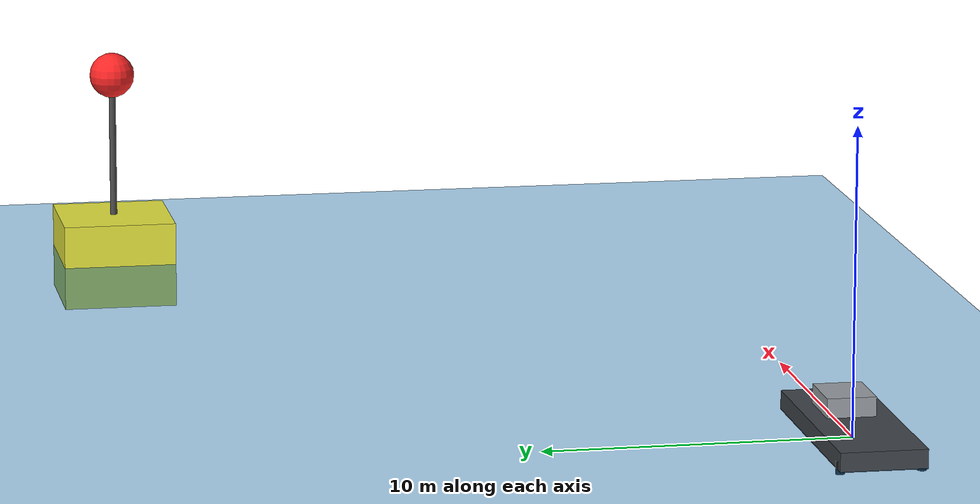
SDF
<?xml version="1.0"?>
<sdf version="1.9">
  <world name="cusv_harbor">

    <physics name="1ms" type="ignored">
      <max_step_size>0.004</max_step_size>
      <real_time_factor>1.0</real_time_factor>
    </physics>

    <plugin filename="gz-sim-physics-system" name="gz::sim::systems::Physics"/>
    <plugin filename="gz-sim-user-commands-system" name="gz::sim::systems::UserCommands"/>
    <plugin filename="gz-sim-scene-broadcaster-system" name="gz::sim::systems::SceneBroadcaster"/>
    <plugin filename="gz-sim-imu-system" name="gz::sim::systems::Imu"/>
    <plugin filename="gz-sim-navsat-system" name="gz::sim::systems::NavSat"/>

    <plugin filename="gz-sim-buoyancy-system" name="gz::sim::systems::Buoyancy">
      <graded_buoyancy>
        <default_density>1000.0</default_density>
        <density_change>
          <above_depth>0</above_depth>
          <density>1.0</density>
        </density_change>
      </graded_buoyancy>
    </plugin>

    <gravity>0 0 -9.81</gravity>
    <magnetic_field>5.5645e-6 22.8758e-6 -42.3884e-6</magnetic_field>

    <spherical_coordinates>
      <surface_model>EARTH_WGS84</surface_model>
      <world_frame_orientation>ENU</world_frame_orientation>
      <latitude_deg>-33.724223</latitude_deg>
      <longitude_deg>150.679736</longitude_deg>
      <elevation>0</elevation>
      <heading_deg>0</heading_deg>
    </spherical_coordinates>

    <scene>
      <ambient>0.6 0.6 0.6 1.0</ambient>
      <background>0.5 0.7 0.9 1.0</background>
    </scene>

    <light type="directional" name="sun">
      <cast_shadows>true</cast_shadows>
      <pose>0 0 50 0 0 0</pose>
      <diffuse>1 1 1 1</diffuse>
      <specular>0.2 0.2 0.2 1</specular>
      <direction>0.3 0.3 -1</direction>
    </light>

    <!-- Cosmetic translucent water surface at z=0 (visual only, no collision). -->
    <model name="water_surface">
      <static>true</static>
      <pose>0 0 0 0 0 0</pose>
      <link name="water_surface_link">
        <visual name="water_surface_visual">
          <transparency>0.6</transparency>
          <geometry>
            <box><size>2000 2000 0.01</size></box>
          </geometry>
          <material>
            <ambient>0.0 0.3 0.5 0.6</ambient>
            <diffuse>0.0 0.4 0.7 0.6</diffuse>
          </material>
        </visual>
      </link>
    </model>

    <include>
      <uri>model://cusv</uri>
      <pose>0 0 0.5 0 0 0</pose>
    </include>

    <!-- ground control station (the operator/GCS landmark) -->
    <include>
      <uri>model://ground_station</uri>
      <pose>30 20 0 0 0 0</pose>
    </include>
  </world>
</sdf>

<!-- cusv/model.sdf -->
<sdf version="1.9">
  <model name="cusv">
    <link name="base_link">
      <inertial>
        <pose>0 0 -0.45 0 0 0</pose>
        <mass>7700.0</mass>
        <inertia>
          <ixx>5281.3</ixx>
          <ixy>0</ixy>
          <ixz>0</ixz>
          <iyy>46097.3</iyy>
          <iyz>0</iyz>
          <izz>41317.3</izz>
        </inertia>
      </inertial>

      <collision name="hull_collision">
        <pose>0 0 -0.2 0 0 0</pose>
        <geometry>
          <box><size>8.0 2.8 0.625</size></box>
        </geometry>
      </collision>

      <visual name="hull_visual">
        <pose>0 0 -0.2 0 0 0</pose>
        <geometry>
          <box><size>8.0 2.8 0.625</size></box>
        </geometry>
        <material>
          <diffuse>0.25 0.27 0.29 1</diffuse>
          <ambient>0.2 0.22 0.24 1</ambient>
          <specular>0.4 0.4 0.4 1</specular>
        </material>
      </visual>
      <!-- small deckhouse, purely cosmetic, for visual orientation -->
      <visual name="deckhouse_visual">
        <pose>1.2 0 0.35 0 0 0</pose>
        <geometry>
          <box><size>2.0 1.6 0.8</size></box>
        </geometry>
        <material>
          <diffuse>0.6 0.62 0.64 1</diffuse>
          <ambient>0.5 0.52 0.54 1</ambient>
          <specular>0.4 0.4 0.4 1</specular>
        </material>
      </visual>
    </link>

    <link name="motor_stbd_link">
      <pose>-3.6 -1.3 -0.45 0 0 0</pose>
      <inertial>
        <mass>15.0</mass>
        <inertia>
          <ixx>0.5</ixx>
          <ixy>0</ixy>
          <ixz>0</ixz>
          <iyy>0.5</iyy>
          <iyz>0</iyz>
          <izz>0.5</izz>
        </inertia>
      </inertial>
      <visual name="thruster_visual">
        <geometry>
          <cylinder><radius>0.15</radius><length>0.4</length></cylinder>
        </geometry>
        <material>
          <diffuse>0.1 0.1 0.1 1</diffuse>
          <ambient>0.1 0.1 0.1 1</ambient>
        </material>
      </visual>
    </link>
    <joint name="motor_stbd_joint" type="revolute">
      <parent>base_link</parent>
      <child>motor_stbd_link</child>
      <axis>
        <xyz>0 0 -1</xyz>
        <limit>
          <lower>-1e16</lower>
          <upper>1e16</upper>
        </limit>
        <dynamics>
          <damping>0.05</damping>
        </dynamics>
      </axis>
    </joint>

    <link name="motor_port_link">
      <pose>-3.6 1.3 -0.45 0 0 0</pose>
      <inertial>
        <mass>15.0</mass>
        <inertia>
          <ixx>0.5</ixx>
          <ixy>0</ixy>
          <ixz>0</ixz>
          <iyy>0.5</iyy>
          <iyz>0</iyz>
          <izz>0.5</izz>
        </inertia>
      </inertial>
      <visual name="thruster_visual">
        <geometry>
          <cylinder><radius>0.15</radius><length>0.4</length></cylinder>
        </geometry>
        <material>
          <diffuse>0.1 0.1 0.1 1</diffuse>
          <ambient>0.1 0.1 0.1 1</ambient>
        </material>
      </visual>
    </link>
    <joint name="motor_port_joint" type="revolute">
      <parent>base_link</parent>
      <child>motor_port_link</child>
      <axis>
        <xyz>0 0 -1</xyz>
        <limit>
          <lower>-1e16</lower>
          <upper>1e16</upper>
        </limit>
        <dynamics>
          <damping>0.05</damping>
        </dynamics>
      </axis>
    </joint>

    <!-- sensors -->
    <link name="imu_link">
      <inertial>
        <pose>0 0 0 0 0 0</pose>
        <mass>0.1</mass>
        <inertia>
          <ixx>0.0001</ixx>
          <ixy>0</ixy>
          <ixz>0</ixz>
          <iyy>0.0001</iyy>
          <iyz>0</iyz>
          <izz>0.0001</izz>
        </inertia>
      </inertial>
      <sensor name="imu_sensor" type="imu">
        <pose degrees="true">0 0 0 180 0 0</pose>
        <always_on>1</always_on>
        <update_rate>1000.0</update_rate>
      </sensor>
      <sensor name="navsat_sensor" type="navsat">
        <always_on>1</always_on>
        <update_rate>10.0</update_rate>
        <topic>navsat</topic>
      </sensor>
    </link>
    <joint name="imu_joint" type="revolute">
      <child>imu_link</child>
      <parent>base_link</parent>
      <axis>
        <xyz>0 0 1</xyz>
        <limit>
          <lower>0</lower>
          <upper>0</upper>
        </limit>
        <dynamics>
          <damping>1.0</damping>
        </dynamics>
      </axis>
    </joint>

    <!-- plugins -->
    <plugin name="gz::sim::systems::JointStatePublisher"
      filename="gz-sim-joint-state-publisher-system">
    </plugin>
    <plugin name="gz::sim::systems::OdometryPublisher"
      filename="gz-sim-odometry-publisher-system">
      <odom_frame>odom</odom_frame>
      <robot_base_frame>base_link</robot_base_frame>
      <dimensions>3</dimensions>
    </plugin>

    <plugin name="gz::sim::systems::Thruster"
      filename="gz-sim-thruster-system">
      <namespace>cusv</namespace>
      <joint_name>motor_port_joint</joint_name>
      <thrust_coefficient>-0.02</thrust_coefficient>
      <fluid_density>1025</fluid_density>
      <propeller_diameter>0.3</propeller_diameter>
      <velocity_control>0</velocity_control>
      <use_angvel_cmd>0</use_angvel_cmd>
    </plugin>

    <plugin name="gz::sim::systems::Thruster"
      filename="gz-sim-thruster-system">
      <namespace>cusv</namespace>
      <joint_name>motor_stbd_joint</joint_name>
      <thrust_coefficient>0.02</thrust_coefficient>
      <fluid_density>1025</fluid_density>
      <propeller_diameter>0.3</propeller_diameter>
      <velocity_control>0</velocity_control>
      <use_angvel_cmd>0</use_angvel_cmd>
    </plugin>

    <!-- Linear+quadratic drag, BlueBoat's live-tuned coefficients scaled
         by mass_ratio^(2/3) ~= 40.4 (see header comment for derivation
         and sanity check). -->
    <plugin filename="gz-sim-hydrodynamics-system"
            name="gz::sim::systems::Hydrodynamics">
      <link_name>base_link</link_name>
      <water_density>1000.0</water_density>
      <xDotU>0</xDotU>
      <yDotV>0</yDotV>
      <zDotW>0</zDotW>
      <kDotP>0</kDotP>
      <mDotQ>0</mDotQ>
      <nDotR>0</nDotR>
      <xU>-808</xU>
      <yV>-1615</yV>
      <zW>-1615</zW>
      <kP>-24200</kP>
      <mQ>-24200</mQ>
      <nR>-32300</nR>
      <xUabsU>-1010</xUabsU>
      <yVabsV>-2423</yVabsV>
      <zWabsW>-2423</zWabsW>
      <kPabsP>-40400</kPabsP>
      <mQabsQ>-40400</mQabsQ>
      <nRabsR>-48500</nRabsR>
    </plugin>

    <!-- ardupilot plugin -->
    <plugin name="ArduPilotPlugin"
      filename="ArduPilotPlugin">
      <fdm_addr>127.0.0.1</fdm_addr>
      <fdm_port_in>9100</fdm_port_in>
      <connectionTimeoutMaxCount>5</connectionTimeoutMaxCount>
      <lock_step>1</lock_step>
      <gazeboXYZToNED degrees="true">0 0 0 180 0 90</gazeboXYZToNED>
      <modelXYZToAirplaneXForwardZDown degrees="true">0 0 0 180 0 0</modelXYZToAirplaneXForwardZDown>
      <imuName>imu_link::imu_sensor</imuName>

      <control channel="0">
        <jointName>motor_port_joint</jointName>
        <multiplier>8000</multiplier>
        <offset>-0.5</offset>
        <servo_min>1000</servo_min>
        <servo_max>2000</servo_max>
        <type>COMMAND</type>
        <cmd_topic>/model/cusv/joint/motor_port_joint/cmd_thrust</cmd_topic>
      </control>

      <!--
        stbd motor — SERVO3_FUNCTION 74 (ThrottleRight)
      -->
      <control channel="2">
        <jointName>motor_stbd_joint</jointName>
        <multiplier>8000</multiplier>
        <offset>-0.5</offset>
        <servo_min>1000</servo_min>
        <servo_max>2000</servo_max>
        <type>COMMAND</type>
        <cmd_topic>/model/cusv/joint/motor_stbd_joint/cmd_thrust</cmd_topic>
      </control>
    </plugin>

  </model>
</sdf>

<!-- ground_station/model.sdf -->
<sdf version="1.9">
  <model name="ground_station">
    <static>true</static>
    <link name="base">
      <visual name="hut">
        <geometry><box><size>4 4 3</size></box></geometry>
        <material><ambient>0.85 0.85 0.2 1</ambient><diffuse>0.9 0.9 0.25 1</diffuse></material>
      </visual>
      <visual name="mast">
        <pose>0 0 4.0 0 0 0</pose>
        <geometry><cylinder><radius>0.12</radius><length>5</length></cylinder></geometry>
        <material><ambient>0.2 0.2 0.2 1</ambient><diffuse>0.3 0.3 0.3 1</diffuse></material>
      </visual>
      <visual name="dish">
        <pose>0 0 6.6 0 0 0</pose>
        <geometry><sphere><radius>0.8</radius></sphere></geometry>
        <material><ambient>0.9 0.1 0.1 1</ambient><diffuse>1 0.15 0.15 1</diffuse></material>
      </visual>
      <collision name="c"><geometry><box><size>4 4 3</size></box></geometry></collision>
    </link>
  </model>
</sdf>
